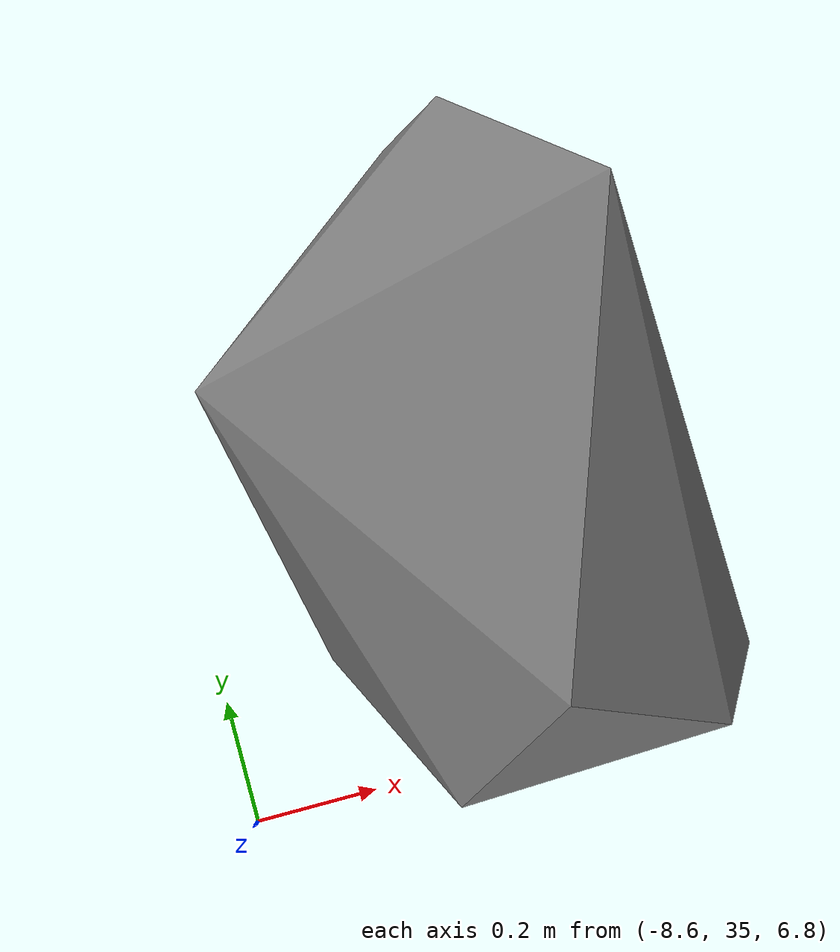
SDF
<sdf version="1.8">
 <model name="blue_mountains">
  <static>true</static>
  <link name="forest_19_23">
   <collision name="tree_38_trunk">
    <pose>-7.754589 35.52032 5.788765 0 0 -0.0114134</pose>
    <geometry><cylinder><radius>0.04094498</radius><length>1.99476</length></cylinder></geometry>
   </collision>
   <collision name="plant_38_crown_0">
    <pose>-7.770966 35.52051 4.791385 0 0 -0.0114134</pose>
    <geometry>
     <mesh>
      <uri>model://blue_mountains/meshes/canopy_7_0.dae</uri>
      <scale>0.1637799 0.1637799 0.1499787</scale>
     </mesh>
    </geometry>
   </collision>
   <collision name="plant_38_crown_1">
    <pose>-7.770966 35.52051 4.791385 0 0 -0.0114134</pose>
    <geometry>
     <mesh>
      <uri>model://blue_mountains/meshes/canopy_7_1.dae</uri>
      <scale>0.1637799 0.1637799 0.1499787</scale>
     </mesh>
    </geometry>
   </collision>
   <collision name="tree_105_trunk">
    <pose>-5.367648 34.53166 7.248756 0 0 -2.815485</pose>
    <geometry><cylinder><radius>0.06356184</radius><length>4.048664</length></cylinder></geometry>
   </collision>
   <collision name="plant_105_crown_0">
    <pose>-5.343563 34.53981 5.224424 0 0 -2.815485</pose>
    <geometry>
     <mesh>
      <uri>model://blue_mountains/meshes/canopy_5_0.dae</uri>
      <scale>0.2542474 0.2542474 0.304316</scale>
     </mesh>
    </geometry>
   </collision>
   <collision name="plant_105_crown_1">
    <pose>-5.343563 34.53981 5.224424 0 0 -2.815485</pose>
    <geometry>
     <mesh>
      <uri>model://blue_mountains/meshes/canopy_5_1.dae</uri>
      <scale>0.2542474 0.2542474 0.304316</scale>
     </mesh>
    </geometry>
   </collision>
   <collision name="tree_121_trunk">
    <pose>-3.264888 35.77503 7.271731 0 0 0.09261759</pose>
    <geometry><cylinder><radius>0.0569956</radius><length>3.202053</length></cylinder></geometry>
   </collision>
   <collision name="plant_121_crown_0">
    <pose>-3.287588 35.77293 5.670705 0 0 0.09261759</pose>
    <geometry>
     <mesh>
      <uri>model://blue_mountains/meshes/canopy_1_0.dae</uri>
      <scale>0.2279824 0.2279824 0.2365063</scale>
     </mesh>
    </geometry>
   </collision>
   <collision name="plant_121_crown_1">
    <pose>-3.287588 35.77293 5.670705 0 0 0.09261759</pose>
    <geometry>
     <mesh>
      <uri>model://blue_mountains/meshes/canopy_1_1.dae</uri>
      <scale>0.2279824 0.2279824 0.2365063</scale>
     </mesh>
    </geometry>
   </collision>
   <collision name="tree_135_trunk">
    <pose>-6.171356 30.1162 5.609 0 0 -2.91031</pose>
    <geometry><cylinder><radius>0.03704991</radius><length>1.861282</length></cylinder></geometry>
   </collision>
   <collision name="plant_135_crown_0">
    <pose>-6.156931 30.1196 4.678359 0 0 -2.91031</pose>
    <geometry>
     <mesh>
      <uri>model://blue_mountains/meshes/canopy_8_0.dae</uri>
      <scale>0.1481996 0.1481996 0.138496</scale>
     </mesh>
    </geometry>
   </collision>
   <collision name="plant_135_crown_1">
    <pose>-6.156931 30.1196 4.678359 0 0 -2.91031</pose>
    <geometry>
     <mesh>
      <uri>model://blue_mountains/meshes/canopy_8_1.dae</uri>
      <scale>0.1481996 0.1481996 0.138496</scale>
     </mesh>
    </geometry>
   </collision>
   <collision name="tree_136_trunk">
    <pose>-2.235646 35.91005 7.673302 0 0 -2.544665</pose>
    <geometry><cylinder><radius>0.05938148</radius><length>3.647424</length></cylinder></geometry>
   </collision>
   <collision name="plant_136_crown_0">
    <pose>-2.216002 35.9234 5.84959 0 0 -2.544665</pose>
    <geometry>
     <mesh>
      <uri>model://blue_mountains/meshes/canopy_8_0.dae</uri>
      <scale>0.2375259 0.2375259 0.271401</scale>
     </mesh>
    </geometry>
   </collision>
   <collision name="plant_136_crown_1">
    <pose>-2.216002 35.9234 5.84959 0 0 -2.544665</pose>
    <geometry>
     <mesh>
      <uri>model://blue_mountains/meshes/canopy_8_1.dae</uri>
      <scale>0.2375259 0.2375259 0.271401</scale>
     </mesh>
    </geometry>
   </collision>
   <collision name="tree_184_trunk">
    <pose>-2.544234 34.52506 6.66253 0 0 2.314563</pose>
    <geometry><cylinder><radius>0.04072347</radius><length>2.016345</length></cylinder></geometry>
   </collision>
   <collision name="plant_184_crown_0">
    <pose>-2.533205 34.51307 5.654357 0 0 2.314563</pose>
    <geometry>
     <mesh>
      <uri>model://blue_mountains/meshes/canopy_0_0.dae</uri>
      <scale>0.1628939 0.1628939 0.1487043</scale>
     </mesh>
    </geometry>
   </collision>
   <collision name="plant_184_crown_1">
    <pose>-2.533205 34.51307 5.654357 0 0 2.314563</pose>
    <geometry>
     <mesh>
      <uri>model://blue_mountains/meshes/canopy_0_1.dae</uri>
      <scale>0.1628939 0.1628939 0.1487043</scale>
     </mesh>
    </geometry>
   </collision>
   <collision name="tree_266_trunk">
    <pose>-8.751791 32.99152 5.376344 0 0 -2.663142</pose>
    <geometry><cylinder><radius>0.03523227</radius><length>1.701562</length></cylinder></geometry>
   </collision>
   <collision name="plant_266_crown_0">
    <pose>-8.739281 32.99801 4.525563 0 0 -2.663142</pose>
    <geometry>
     <mesh>
      <uri>model://blue_mountains/meshes/canopy_3_0.dae</uri>
      <scale>0.1409291 0.1409291 0.1265032</scale>
     </mesh>
    </geometry>
   </collision>
   <collision name="plant_266_crown_1">
    <pose>-8.739281 32.99801 4.525563 0 0 -2.663142</pose>
    <geometry>
     <mesh>
      <uri>model://blue_mountains/meshes/canopy_3_1.dae</uri>
      <scale>0.1409291 0.1409291 0.1265032</scale>
     </mesh>
    </geometry>
   </collision>
   <collision name="plant_471_crown_0">
    <pose>-1.210152 31.38555 5.899859 0 0 0</pose>
    <geometry>
     <mesh>
      <uri>model://blue_mountains/meshes/canopy_10_0.dae</uri>
      <scale>0.07575656 0.07575656 0.06926315</scale>
     </mesh>
    </geometry>
   </collision>
   <collision name="plant_471_crown_1">
    <pose>-1.210152 31.38555 5.899859 0 0 0</pose>
    <geometry>
     <mesh>
      <uri>model://blue_mountains/meshes/canopy_10_1.dae</uri>
      <scale>0.07575656 0.07575656 0.06926315</scale>
     </mesh>
    </geometry>
   </collision>
   <collision name="plant_496_crown_0">
    <pose>-2.332287 32.54438 5.919888 0 0 0</pose>
    <geometry>
     <mesh>
      <uri>model://blue_mountains/meshes/canopy_12_0.dae</uri>
      <scale>0.07575656 0.07575656 0.06926315</scale>
     </mesh>
    </geometry>
   </collision>
   <collision name="plant_496_crown_1">
    <pose>-2.332287 32.54438 5.919888 0 0 0</pose>
    <geometry>
     <mesh>
      <uri>model://blue_mountains/meshes/canopy_12_1.dae</uri>
      <scale>0.07575656 0.07575656 0.06926315</scale>
     </mesh>
    </geometry>
   </collision>
   <collision name="plant_517_crown_0">
    <pose>-0.596386 33.38257 6.25728 0 0 0</pose>
    <geometry>
     <mesh>
      <uri>model://blue_mountains/meshes/canopy_15_0.dae</uri>
      <scale>0.07575656 0.07575656 0.06926315</scale>
     </mesh>
    </geometry>
   </collision>
   <collision name="plant_517_crown_1">
    <pose>-0.596386 33.38257 6.25728 0 0 0</pose>
    <geometry>
     <mesh>
      <uri>model://blue_mountains/meshes/canopy_15_1.dae</uri>
      <scale>0.07575656 0.07575656 0.06926315</scale>
     </mesh>
    </geometry>
   </collision>
   <collision name="plant_518_crown_0">
    <pose>-1.359344 31.79124 5.941419 0 0 0</pose>
    <geometry>
     <mesh>
      <uri>model://blue_mountains/meshes/canopy_9_0.dae</uri>
      <scale>0.07575656 0.07575656 0.06926315</scale>
     </mesh>
    </geometry>
   </collision>
   <collision name="plant_518_crown_1">
    <pose>-1.359344 31.79124 5.941419 0 0 0</pose>
    <geometry>
     <mesh>
      <uri>model://blue_mountains/meshes/canopy_9_1.dae</uri>
      <scale>0.07575656 0.07575656 0.06926315</scale>
     </mesh>
    </geometry>
   </collision>
   <visual name="forest_visual">
    <geometry><mesh><uri>model://blue_mountains/meshes/forest_19_23.dae</uri></mesh></geometry>
    <cast_shadows>false</cast_shadows>
   </visual>
  </link>
 </model>
</sdf>
